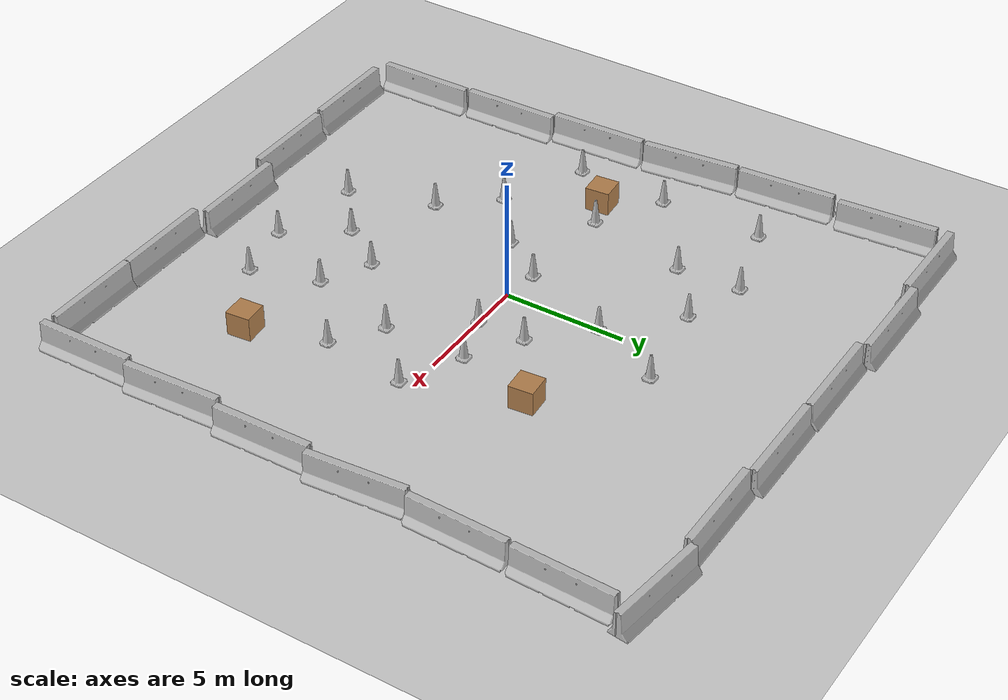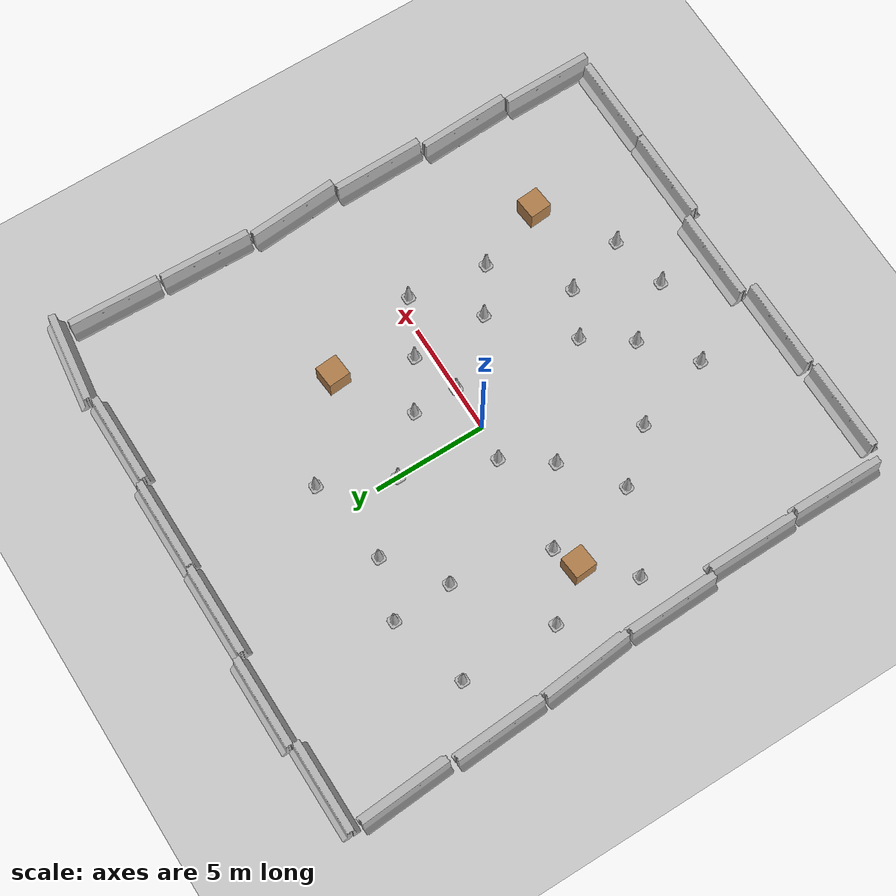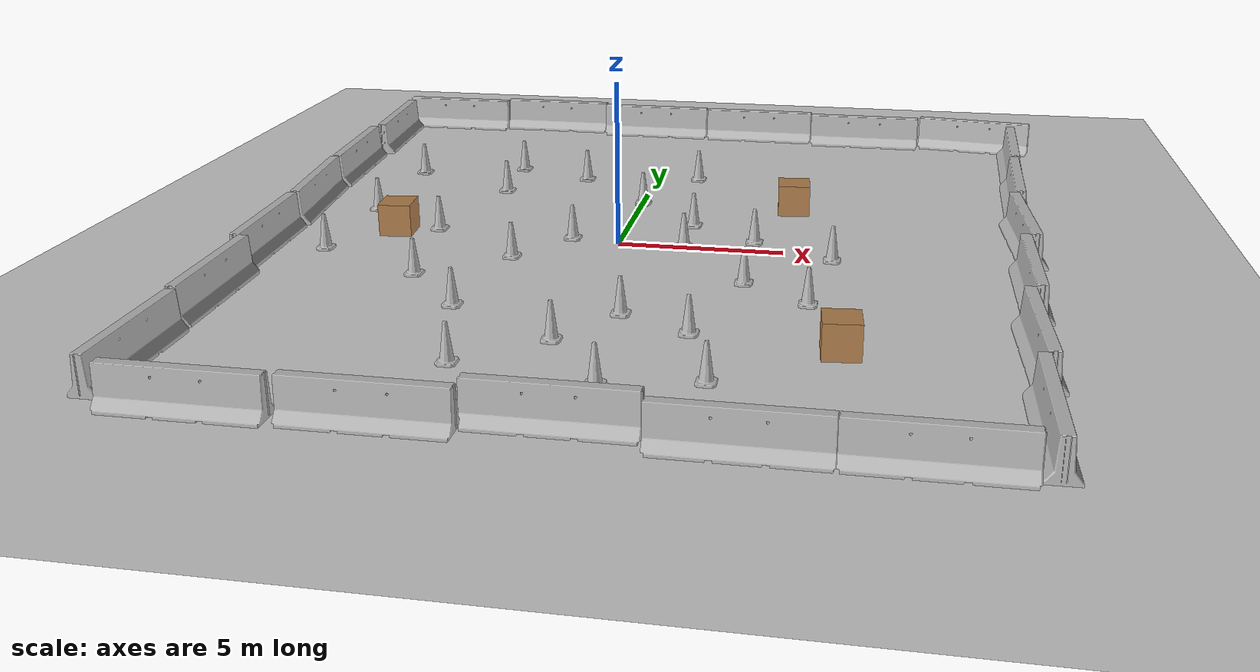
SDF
<sdf version="1.4">
 <world name="default">
  <light name="sun" type="directional">
   <pose>0 0 10 0 -0 0</pose>
   <diffuse>0.8 0.8 0.8 1</diffuse>
   <specular>0.2 0.2 0.2 1</specular>
   <attenuation>
    <range>1000</range>
    <constant>0.9</constant>
    <linear>0.01</linear>
    <quadratic>0.001</quadratic>
   </attenuation>
   <direction>-0.5 0.1 -0.9</direction>
  </light>
  <model name="ground_plane">
   <static>1</static>
   <link name="link">
    <collision name="collision">
     <geometry><plane><normal>0 0 1</normal><size>100 100</size></plane></geometry>
     <surface><friction><ode><mu>100</mu><mu2>50</mu2></ode></friction></surface>
    </collision>
    <visual name="visual">
     <cast_shadows>0</cast_shadows>
     <geometry><plane><normal>0 0 1</normal><size>100 100</size></plane></geometry>
     <material>
      <script><uri>file://media/materials/scripts/gazebo.material</uri><name>Gazebo/Grey</name></script>
     </material>
    </visual>
    <velocity_decay><linear>0</linear><angular>0</angular></velocity_decay>
   </link>
  </model>
  <physics type="ode">
   <max_step_size>0.001</max_step_size>
   <real_time_factor>1</real_time_factor>
   <real_time_update_rate>1000</real_time_update_rate>
   <gravity>0 0 -9.8</gravity>
  </physics>
  <scene><ambient>0.4 0.4 0.4 1</ambient><background>0.7 0.7 0.7 1</background><shadows>1</shadows></scene>
  <spherical_coordinates>
   <surface_model>EARTH_WGS84</surface_model>
   <latitude_deg>0</latitude_deg>
   <longitude_deg>0</longitude_deg>
   <elevation>0</elevation>
   <heading_deg>0</heading_deg>
  </spherical_coordinates>
  <model name="unit_box_1">
   <pose>5 4 0.5 0 -0 0.083754</pose>
   <link name="link">
    <inertial>
     <mass>1</mass>
     <inertia><ixx>1</ixx><ixy>0</ixy><ixz>0</ixz><iyy>1</iyy><iyz>0</iyz><izz>1</izz></inertia>
    </inertial>
    <collision name="collision"><geometry><box><size>1 1 1</size></box></geometry></collision>
    <visual name="visual">
     <geometry><box><size>1 1 1</size></box></geometry>
     <material>
      <script><uri>file://media/materials/scripts/gazebo.material</uri><name>Gazebo/Wood</name></script>
     </material>
    </visual>
    <velocity_decay><linear>0</linear><angular>0</angular></velocity_decay>
   </link>
   <static>0</static>
  </model>
  <model name="unit_box_2">
   <pose>7 -7 0.5 0 -0 0.083754</pose>
   <link name="link">
    <inertial>
     <mass>1</mass>
     <inertia><ixx>1</ixx><ixy>0</ixy><ixz>0</ixz><iyy>1</iyy><iyz>0</iyz><izz>1</izz></inertia>
    </inertial>
    <collision name="collision"><geometry><box><size>1 1 1</size></box></geometry></collision>
    <visual name="visual">
     <geometry><box><size>1 1 1</size></box></geometry>
     <material>
      <script><uri>file://media/materials/scripts/gazebo.material</uri><name>Gazebo/Wood</name></script>
     </material>
    </visual>
    <velocity_decay><linear>0</linear><angular>0</angular></velocity_decay>
   </link>
   <static>0</static>
  </model>
  <model name="unit_box_3">
   <pose>-7 0 0.5 0 -0 0.083754</pose>
   <link name="link">
    <inertial>
     <mass>1</mass>
     <inertia><ixx>1</ixx><ixy>0</ixy><ixz>0</ixz><iyy>1</iyy><iyz>0</iyz><izz>1</izz></inertia>
    </inertial>
    <collision name="collision"><geometry><box><size>1 1 1</size></box></geometry></collision>
    <visual name="visual">
     <geometry><box><size>1 1 1</size></box></geometry>
     <material>
      <script><uri>file://media/materials/scripts/gazebo.material</uri><name>Gazebo/Wood</name></script>
     </material>
    </visual>
    <velocity_decay><linear>0</linear><angular>0</angular></velocity_decay>
   </link>
   <static>0</static>
  </model>
  <model name="jersey_barrier">
   <static>1</static>
   <link name="link">
    <visual name="visual">
     <geometry><mesh><uri>model://jersey_barrier/meshes/jersey_barrier.dae</uri></mesh></geometry>
    </visual>
    <collision name="upright">
     <pose>0 0 0.5715 0 -0 0</pose>
     <geometry><box><size>4.06542 0.3063 1.143</size></box></geometry>
    </collision>
    <collision name="base">
     <pose>0 0 0.032258 0 -0 0</pose>
     <geometry><box><size>4.06542 0.8107 0.064516</size></box></geometry>
    </collision>
    <collision name="base2">
     <pose>0 0 0.1 0 -0 0</pose>
     <geometry><box><size>4.06542 0.65 0.1</size></box></geometry>
    </collision>
    <collision name="base3">
     <pose>0 0 0.2 0 -0 0</pose>
     <geometry><box><size>4.06542 0.5 0.1</size></box></geometry>
    </collision>
    <collision name="left-angle">
     <pose>0 -0.224 0.2401 0.9 -0 0</pose>
     <geometry><box><size>4.06542 0.5 0.064516</size></box></geometry>
    </collision>
    <collision name="right-angle">
     <pose>0 0.224 0.2401 -0.9 0 0</pose>
     <geometry><box><size>4.06542 0.5 0.064516</size></box></geometry>
    </collision>
    <velocity_decay><linear>0</linear><angular>0</angular></velocity_decay>
   </link>
   <pose>-7.26215 -12.5985 0 0 -0 0</pose>
  </model>
  <model name="jersey_barrier_0">
   <static>1</static>
   <link name="link">
    <visual name="visual">
     <geometry><mesh><uri>model://jersey_barrier/meshes/jersey_barrier.dae</uri></mesh></geometry>
    </visual>
    <collision name="upright">
     <pose>0 0 0.5715 0 -0 0</pose>
     <geometry><box><size>4.06542 0.3063 1.143</size></box></geometry>
    </collision>
    <collision name="base">
     <pose>0 0 0.032258 0 -0 0</pose>
     <geometry><box><size>4.06542 0.8107 0.064516</size></box></geometry>
    </collision>
    <collision name="base2">
     <pose>0 0 0.1 0 -0 0</pose>
     <geometry><box><size>4.06542 0.65 0.1</size></box></geometry>
    </collision>
    <collision name="base3">
     <pose>0 0 0.2 0 -0 0</pose>
     <geometry><box><size>4.06542 0.5 0.1</size></box></geometry>
    </collision>
    <collision name="left-angle">
     <pose>0 -0.224 0.2401 0.9 -0 0</pose>
     <geometry><box><size>4.06542 0.5 0.064516</size></box></geometry>
    </collision>
    <collision name="right-angle">
     <pose>0 0.224 0.2401 -0.9 0 0</pose>
     <geometry><box><size>4.06542 0.5 0.064516</size></box></geometry>
    </collision>
    <velocity_decay><linear>0</linear><angular>0</angular></velocity_decay>
   </link>
   <pose>-3 -12.5184 0 0 -0 0</pose>
  </model>
  <model name="jersey_barrier_1">
   <static>1</static>
   <link name="link">
    <visual name="visual">
     <geometry><mesh><uri>model://jersey_barrier/meshes/jersey_barrier.dae</uri></mesh></geometry>
    </visual>
    <collision name="upright">
     <pose>0 0 0.5715 0 -0 0</pose>
     <geometry><box><size>4.06542 0.3063 1.143</size></box></geometry>
    </collision>
    <collision name="base">
     <pose>0 0 0.032258 0 -0 0</pose>
     <geometry><box><size>4.06542 0.8107 0.064516</size></box></geometry>
    </collision>
    <collision name="base2">
     <pose>0 0 0.1 0 -0 0</pose>
     <geometry><box><size>4.06542 0.65 0.1</size></box></geometry>
    </collision>
    <collision name="base3">
     <pose>0 0 0.2 0 -0 0</pose>
     <geometry><box><size>4.06542 0.5 0.1</size></box></geometry>
    </collision>
    <collision name="left-angle">
     <pose>0 -0.224 0.2401 0.9 -0 0</pose>
     <geometry><box><size>4.06542 0.5 0.064516</size></box></geometry>
    </collision>
    <collision name="right-angle">
     <pose>0 0.224 0.2401 -0.9 0 0</pose>
     <geometry><box><size>4.06542 0.5 0.064516</size></box></geometry>
    </collision>
    <velocity_decay><linear>0</linear><angular>0</angular></velocity_decay>
   </link>
   <pose>1 -12 0 0 -0 0</pose>
  </model>
  <model name="jersey_barrier_2">
   <static>1</static>
   <link name="link">
    <visual name="visual">
     <geometry><mesh><uri>model://jersey_barrier/meshes/jersey_barrier.dae</uri></mesh></geometry>
    </visual>
    <collision name="upright">
     <pose>0 0 0.5715 0 -0 0</pose>
     <geometry><box><size>4.06542 0.3063 1.143</size></box></geometry>
    </collision>
    <collision name="base">
     <pose>0 0 0.032258 0 -0 0</pose>
     <geometry><box><size>4.06542 0.8107 0.064516</size></box></geometry>
    </collision>
    <collision name="base2">
     <pose>0 0 0.1 0 -0 0</pose>
     <geometry><box><size>4.06542 0.65 0.1</size></box></geometry>
    </collision>
    <collision name="base3">
     <pose>0 0 0.2 0 -0 0</pose>
     <geometry><box><size>4.06542 0.5 0.1</size></box></geometry>
    </collision>
    <collision name="left-angle">
     <pose>0 -0.224 0.2401 0.9 -0 0</pose>
     <geometry><box><size>4.06542 0.5 0.064516</size></box></geometry>
    </collision>
    <collision name="right-angle">
     <pose>0 0.224 0.2401 -0.9 0 0</pose>
     <geometry><box><size>4.06542 0.5 0.064516</size></box></geometry>
    </collision>
    <velocity_decay><linear>0</linear><angular>0</angular></velocity_decay>
   </link>
   <pose>5.13642 -12.451 0 0 -0 0</pose>
  </model>
  <model name="jersey_barrier_3">
   <static>1</static>
   <link name="link">
    <visual name="visual">
     <geometry><mesh><uri>model://jersey_barrier/meshes/jersey_barrier.dae</uri></mesh></geometry>
    </visual>
    <collision name="upright">
     <pose>0 0 0.5715 0 -0 0</pose>
     <geometry><box><size>4.06542 0.3063 1.143</size></box></geometry>
    </collision>
    <collision name="base">
     <pose>0 0 0.032258 0 -0 0</pose>
     <geometry><box><size>4.06542 0.8107 0.064516</size></box></geometry>
    </collision>
    <collision name="base2">
     <pose>0 0 0.1 0 -0 0</pose>
     <geometry><box><size>4.06542 0.65 0.1</size></box></geometry>
    </collision>
    <collision name="base3">
     <pose>0 0 0.2 0 -0 0</pose>
     <geometry><box><size>4.06542 0.5 0.1</size></box></geometry>
    </collision>
    <collision name="left-angle">
     <pose>0 -0.224 0.2401 0.9 -0 0</pose>
     <geometry><box><size>4.06542 0.5 0.064516</size></box></geometry>
    </collision>
    <collision name="right-angle">
     <pose>0 0.224 0.2401 -0.9 0 0</pose>
     <geometry><box><size>4.06542 0.5 0.064516</size></box></geometry>
    </collision>
    <velocity_decay><linear>0</linear><angular>0</angular></velocity_decay>
   </link>
   <pose>9.19104 -12.4604 0 0 -0 0</pose>
  </model>
  <model name="jersey_barrier_4">
   <static>1</static>
   <link name="link">
    <visual name="visual">
     <geometry><mesh><uri>model://jersey_barrier/meshes/jersey_barrier.dae</uri></mesh></geometry>
    </visual>
    <collision name="upright">
     <pose>0 0 0.5715 0 -0 0</pose>
     <geometry><box><size>4.06542 0.3063 1.143</size></box></geometry>
    </collision>
    <collision name="base">
     <pose>0 0 0.032258 0 -0 0</pose>
     <geometry><box><size>4.06542 0.8107 0.064516</size></box></geometry>
    </collision>
    <collision name="base2">
     <pose>0 0 0.1 0 -0 0</pose>
     <geometry><box><size>4.06542 0.65 0.1</size></box></geometry>
    </collision>
    <collision name="base3">
     <pose>0 0 0.2 0 -0 0</pose>
     <geometry><box><size>4.06542 0.5 0.1</size></box></geometry>
    </collision>
    <collision name="left-angle">
     <pose>0 -0.224 0.2401 0.9 -0 0</pose>
     <geometry><box><size>4.06542 0.5 0.064516</size></box></geometry>
    </collision>
    <collision name="right-angle">
     <pose>0 0.224 0.2401 -0.9 0 0</pose>
     <geometry><box><size>4.06542 0.5 0.064516</size></box></geometry>
    </collision>
    <velocity_decay><linear>0</linear><angular>0</angular></velocity_decay>
   </link>
   <pose>11.6163 -10.6377 0 0 -0 1.58161</pose>
  </model>
  <model name="jersey_barrier_5">
   <static>1</static>
   <link name="link">
    <visual name="visual">
     <geometry><mesh><uri>model://jersey_barrier/meshes/jersey_barrier.dae</uri></mesh></geometry>
    </visual>
    <collision name="upright">
     <pose>0 0 0.5715 0 -0 0</pose>
     <geometry><box><size>4.06542 0.3063 1.143</size></box></geometry>
    </collision>
    <collision name="base">
     <pose>0 0 0.032258 0 -0 0</pose>
     <geometry><box><size>4.06542 0.8107 0.064516</size></box></geometry>
    </collision>
    <collision name="base2">
     <pose>0 0 0.1 0 -0 0</pose>
     <geometry><box><size>4.06542 0.65 0.1</size></box></geometry>
    </collision>
    <collision name="base3">
     <pose>0 0 0.2 0 -0 0</pose>
     <geometry><box><size>4.06542 0.5 0.1</size></box></geometry>
    </collision>
    <collision name="left-angle">
     <pose>0 -0.224 0.2401 0.9 -0 0</pose>
     <geometry><box><size>4.06542 0.5 0.064516</size></box></geometry>
    </collision>
    <collision name="right-angle">
     <pose>0 0.224 0.2401 -0.9 0 0</pose>
     <geometry><box><size>4.06542 0.5 0.064516</size></box></geometry>
    </collision>
    <velocity_decay><linear>0</linear><angular>0</angular></velocity_decay>
   </link>
   <pose>-9.25889 13.0001 0 0 -0 0</pose>
  </model>
  <model name="jersey_barrier_6">
   <static>1</static>
   <link name="link">
    <visual name="visual">
     <geometry><mesh><uri>model://jersey_barrier/meshes/jersey_barrier.dae</uri></mesh></geometry>
    </visual>
    <collision name="upright">
     <pose>0 0 0.5715 0 -0 0</pose>
     <geometry><box><size>4.06542 0.3063 1.143</size></box></geometry>
    </collision>
    <collision name="base">
     <pose>0 0 0.032258 0 -0 0</pose>
     <geometry><box><size>4.06542 0.8107 0.064516</size></box></geometry>
    </collision>
    <collision name="base2">
     <pose>0 0 0.1 0 -0 0</pose>
     <geometry><box><size>4.06542 0.65 0.1</size></box></geometry>
    </collision>
    <collision name="base3">
     <pose>0 0 0.2 0 -0 0</pose>
     <geometry><box><size>4.06542 0.5 0.1</size></box></geometry>
    </collision>
    <collision name="left-angle">
     <pose>0 -0.224 0.2401 0.9 -0 0</pose>
     <geometry><box><size>4.06542 0.5 0.064516</size></box></geometry>
    </collision>
    <collision name="right-angle">
     <pose>0 0.224 0.2401 -0.9 0 0</pose>
     <geometry><box><size>4.06542 0.5 0.064516</size></box></geometry>
    </collision>
    <velocity_decay><linear>0</linear><angular>0</angular></velocity_decay>
   </link>
   <pose>-5.24766 13.2823 0 0 -0 0</pose>
  </model>
  <model name="jersey_barrier_7">
   <static>1</static>
   <link name="link">
    <visual name="visual">
     <geometry><mesh><uri>model://jersey_barrier/meshes/jersey_barrier.dae</uri></mesh></geometry>
    </visual>
    <collision name="upright">
     <pose>0 0 0.5715 0 -0 0</pose>
     <geometry><box><size>4.06542 0.3063 1.143</size></box></geometry>
    </collision>
    <collision name="base">
     <pose>0 0 0.032258 0 -0 0</pose>
     <geometry><box><size>4.06542 0.8107 0.064516</size></box></geometry>
    </collision>
    <collision name="base2">
     <pose>0 0 0.1 0 -0 0</pose>
     <geometry><box><size>4.06542 0.65 0.1</size></box></geometry>
    </collision>
    <collision name="base3">
     <pose>0 0 0.2 0 -0 0</pose>
     <geometry><box><size>4.06542 0.5 0.1</size></box></geometry>
    </collision>
    <collision name="left-angle">
     <pose>0 -0.224 0.2401 0.9 -0 0</pose>
     <geometry><box><size>4.06542 0.5 0.064516</size></box></geometry>
    </collision>
    <collision name="right-angle">
     <pose>0 0.224 0.2401 -0.9 0 0</pose>
     <geometry><box><size>4.06542 0.5 0.064516</size></box></geometry>
    </collision>
    <velocity_decay><linear>0</linear><angular>0</angular></velocity_decay>
   </link>
   <pose>-1.1439 12.9956 0 0 -0 0</pose>
  </model>
  <model name="jersey_barrier_8">
   <static>1</static>
   <link name="link">
    <visual name="visual">
     <geometry><mesh><uri>model://jersey_barrier/meshes/jersey_barrier.dae</uri></mesh></geometry>
    </visual>
    <collision name="upright">
     <pose>0 0 0.5715 0 -0 0</pose>
     <geometry><box><size>4.06542 0.3063 1.143</size></box></geometry>
    </collision>
    <collision name="base">
     <pose>0 0 0.032258 0 -0 0</pose>
     <geometry><box><size>4.06542 0.8107 0.064516</size></box></geometry>
    </collision>
    <collision name="base2">
     <pose>0 0 0.1 0 -0 0</pose>
     <geometry><box><size>4.06542 0.65 0.1</size></box></geometry>
    </collision>
    <collision name="base3">
     <pose>0 0 0.2 0 -0 0</pose>
     <geometry><box><size>4.06542 0.5 0.1</size></box></geometry>
    </collision>
    <collision name="left-angle">
     <pose>0 -0.224 0.2401 0.9 -0 0</pose>
     <geometry><box><size>4.06542 0.5 0.064516</size></box></geometry>
    </collision>
    <collision name="right-angle">
     <pose>0 0.224 0.2401 -0.9 0 0</pose>
     <geometry><box><size>4.06542 0.5 0.064516</size></box></geometry>
    </collision>
    <velocity_decay><linear>0</linear><angular>0</angular></velocity_decay>
   </link>
   <pose>2.95316 12.9508 0 0 -0 0</pose>
  </model>
  <model name="jersey_barrier_9">
   <static>1</static>
   <link name="link">
    <visual name="visual">
     <geometry><mesh><uri>model://jersey_barrier/meshes/jersey_barrier.dae</uri></mesh></geometry>
    </visual>
    <collision name="upright">
     <pose>0 0 0.5715 0 -0 0</pose>
     <geometry><box><size>4.06542 0.3063 1.143</size></box></geometry>
    </collision>
    <collision name="base">
     <pose>0 0 0.032258 0 -0 0</pose>
     <geometry><box><size>4.06542 0.8107 0.064516</size></box></geometry>
    </collision>
    <collision name="base2">
     <pose>0 0 0.1 0 -0 0</pose>
     <geometry><box><size>4.06542 0.65 0.1</size></box></geometry>
    </collision>
    <collision name="base3">
     <pose>0 0 0.2 0 -0 0</pose>
     <geometry><box><size>4.06542 0.5 0.1</size></box></geometry>
    </collision>
    <collision name="left-angle">
     <pose>0 -0.224 0.2401 0.9 -0 0</pose>
     <geometry><box><size>4.06542 0.5 0.064516</size></box></geometry>
    </collision>
    <collision name="right-angle">
     <pose>0 0.224 0.2401 -0.9 0 0</pose>
     <geometry><box><size>4.06542 0.5 0.064516</size></box></geometry>
    </collision>
    <velocity_decay><linear>0</linear><angular>0</angular></velocity_decay>
   </link>
   <pose>7.0396 12.7183 0 0 -0 0</pose>
  </model>
  <model name="jersey_barrier_10">
   <static>1</static>
   <link name="link">
    <visual name="visual">
     <geometry><mesh><uri>model://jersey_barrier/meshes/jersey_barrier.dae</uri></mesh></geometry>
    </visual>
    <collision name="upright">
     <pose>0 0 0.5715 0 -0 0</pose>
     <geometry><box><size>4.06542 0.3063 1.143</size></box></geometry>
    </collision>
    <collision name="base">
     <pose>0 0 0.032258 0 -0 0</pose>
     <geometry><box><size>4.06542 0.8107 0.064516</size></box></geometry>
    </collision>
    <collision name="base2">
     <pose>0 0 0.1 0 -0 0</pose>
     <geometry><box><size>4.06542 0.65 0.1</size></box></geometry>
    </collision>
    <collision name="base3">
     <pose>0 0 0.2 0 -0 0</pose>
     <geometry><box><size>4.06542 0.5 0.1</size></box></geometry>
    </collision>
    <collision name="left-angle">
     <pose>0 -0.224 0.2401 0.9 -0 0</pose>
     <geometry><box><size>4.06542 0.5 0.064516</size></box></geometry>
    </collision>
    <collision name="right-angle">
     <pose>0 0.224 0.2401 -0.9 0 0</pose>
     <geometry><box><size>4.06542 0.5 0.064516</size></box></geometry>
    </collision>
    <velocity_decay><linear>0</linear><angular>0</angular></velocity_decay>
   </link>
   <pose>11.167 12.7238 0 0 0 -0.129577</pose>
  </model>
  <model name="jersey_barrier_11">
   <static>1</static>
   <link name="link">
    <visual name="visual">
     <geometry><mesh><uri>model://jersey_barrier/meshes/jersey_barrier.dae</uri></mesh></geometry>
    </visual>
    <collision name="upright">
     <pose>0 0 0.5715 0 -0 0</pose>
     <geometry><box><size>4.06542 0.3063 1.143</size></box></geometry>
    </collision>
    <collision name="base">
     <pose>0 0 0.032258 0 -0 0</pose>
     <geometry><box><size>4.06542 0.8107 0.064516</size></box></geometry>
    </collision>
    <collision name="base2">
     <pose>0 0 0.1 0 -0 0</pose>
     <geometry><box><size>4.06542 0.65 0.1</size></box></geometry>
    </collision>
    <collision name="base3">
     <pose>0 0 0.2 0 -0 0</pose>
     <geometry><box><size>4.06542 0.5 0.1</size></box></geometry>
    </collision>
    <collision name="left-angle">
     <pose>0 -0.224 0.2401 0.9 -0 0</pose>
     <geometry><box><size>4.06542 0.5 0.064516</size></box></geometry>
    </collision>
    <collision name="right-angle">
     <pose>0 0.224 0.2401 -0.9 0 0</pose>
     <geometry><box><size>4.06542 0.5 0.064516</size></box></geometry>
    </collision>
    <velocity_decay><linear>0</linear><angular>0</angular></velocity_decay>
   </link>
   <pose>12.194 5.8304 0 0 -0 1.54369</pose>
  </model>
  <model name="jersey_barrier_12">
   <static>1</static>
   <link name="link">
    <visual name="visual">
     <geometry><mesh><uri>model://jersey_barrier/meshes/jersey_barrier.dae</uri></mesh></geometry>
    </visual>
    <collision name="upright">
     <pose>0 0 0.5715 0 -0 0</pose>
     <geometry><box><size>4.06542 0.3063 1.143</size></box></geometry>
    </collision>
    <collision name="base">
     <pose>0 0 0.032258 0 -0 0</pose>
     <geometry><box><size>4.06542 0.8107 0.064516</size></box></geometry>
    </collision>
    <collision name="base2">
     <pose>0 0 0.1 0 -0 0</pose>
     <geometry><box><size>4.06542 0.65 0.1</size></box></geometry>
    </collision>
    <collision name="base3">
     <pose>0 0 0.2 0 -0 0</pose>
     <geometry><box><size>4.06542 0.5 0.1</size></box></geometry>
    </collision>
    <collision name="left-angle">
     <pose>0 -0.224 0.2401 0.9 -0 0</pose>
     <geometry><box><size>4.06542 0.5 0.064516</size></box></geometry>
    </collision>
    <collision name="right-angle">
     <pose>0 0.224 0.2401 -0.9 0 0</pose>
     <geometry><box><size>4.06542 0.5 0.064516</size></box></geometry>
    </collision>
    <velocity_decay><linear>0</linear><angular>0</angular></velocity_decay>
   </link>
   <pose>12.0907 1.67887 0 0 -0 1.64825</pose>
  </model>
  <model name="jersey_barrier_13">
   <static>1</static>
   <link name="link">
    <visual name="visual">
     <geometry><mesh><uri>model://jersey_barrier/meshes/jersey_barrier.dae</uri></mesh></geometry>
    </visual>
    <collision name="upright">
     <pose>0 0 0.5715 0 -0 0</pose>
     <geometry><box><size>4.06542 0.3063 1.143</size></box></geometry>
    </collision>
    <collision name="base">
     <pose>0 0 0.032258 0 -0 0</pose>
     <geometry><box><size>4.06542 0.8107 0.064516</size></box></geometry>
    </collision>
    <collision name="base2">
     <pose>0 0 0.1 0 -0 0</pose>
     <geometry><box><size>4.06542 0.65 0.1</size></box></geometry>
    </collision>
    <collision name="base3">
     <pose>0 0 0.2 0 -0 0</pose>
     <geometry><box><size>4.06542 0.5 0.1</size></box></geometry>
    </collision>
    <collision name="left-angle">
     <pose>0 -0.224 0.2401 0.9 -0 0</pose>
     <geometry><box><size>4.06542 0.5 0.064516</size></box></geometry>
    </collision>
    <collision name="right-angle">
     <pose>0 0.224 0.2401 -0.9 0 0</pose>
     <geometry><box><size>4.06542 0.5 0.064516</size></box></geometry>
    </collision>
    <velocity_decay><linear>0</linear><angular>0</angular></velocity_decay>
   </link>
   <pose>11.9521 -2.38624 0 0 -0 1.58545</pose>
  </model>
  <model name="jersey_barrier_14">
   <static>1</static>
   <link name="link">
    <visual name="visual">
     <geometry><mesh><uri>model://jersey_barrier/meshes/jersey_barrier.dae</uri></mesh></geometry>
    </visual>
    <collision name="upright">
     <pose>0 0 0.5715 0 -0 0</pose>
     <geometry><box><size>4.06542 0.3063 1.143</size></box></geometry>
    </collision>
    <collision name="base">
     <pose>0 0 0.032258 0 -0 0</pose>
     <geometry><box><size>4.06542 0.8107 0.064516</size></box></geometry>
    </collision>
    <collision name="base2">
     <pose>0 0 0.1 0 -0 0</pose>
     <geometry><box><size>4.06542 0.65 0.1</size></box></geometry>
    </collision>
    <collision name="base3">
     <pose>0 0 0.2 0 -0 0</pose>
     <geometry><box><size>4.06542 0.5 0.1</size></box></geometry>
    </collision>
    <collision name="left-angle">
     <pose>0 -0.224 0.2401 0.9 -0 0</pose>
     <geometry><box><size>4.06542 0.5 0.064516</size></box></geometry>
    </collision>
    <collision name="right-angle">
     <pose>0 0.224 0.2401 -0.9 0 0</pose>
     <geometry><box><size>4.06542 0.5 0.064516</size></box></geometry>
    </collision>
    <velocity_decay><linear>0</linear><angular>0</angular></velocity_decay>
   </link>
   <pose>11.7484 -6.5369 0 0 -0 1.61742</pose>
  </model>
  <model name="jersey_barrier_15">
   <static>1</static>
   <link name="link">
    <visual name="visual">
     <geometry><mesh><uri>model://jersey_barrier/meshes/jersey_barrier.dae</uri></mesh></geometry>
    </visual>
    <collision name="upright">
     <pose>0 0 0.5715 0 -0 0</pose>
     <geometry><box><size>4.06542 0.3063 1.143</size></box></geometry>
    </collision>
    <collision name="base">
     <pose>0 0 0.032258 0 -0 0</pose>
     <geometry><box><size>4.06542 0.8107 0.064516</size></box></geometry>
    </collision>
    <collision name="base2">
     <pose>0 0 0.1 0 -0 0</pose>
     <geometry><box><size>4.06542 0.65 0.1</size></box></geometry>
    </collision>
    <collision name="base3">
     <pose>0 0 0.2 0 -0 0</pose>
     <geometry><box><size>4.06542 0.5 0.1</size></box></geometry>
    </collision>
    <collision name="left-angle">
     <pose>0 -0.224 0.2401 0.9 -0 0</pose>
     <geometry><box><size>4.06542 0.5 0.064516</size></box></geometry>
    </collision>
    <collision name="right-angle">
     <pose>0 0.224 0.2401 -0.9 0 0</pose>
     <geometry><box><size>4.06542 0.5 0.064516</size></box></geometry>
    </collision>
    <velocity_decay><linear>0</linear><angular>0</angular></velocity_decay>
   </link>
   <pose>-10.907 6.17584 0 0 -0 1.63254</pose>
  </model>
  <model name="jersey_barrier_16">
   <static>1</static>
   <link name="link">
    <visual name="visual">
     <geometry><mesh><uri>model://jersey_barrier/meshes/jersey_barrier.dae</uri></mesh></geometry>
    </visual>
    <collision name="upright">
     <pose>0 0 0.5715 0 -0 0</pose>
     <geometry><box><size>4.06542 0.3063 1.143</size></box></geometry>
    </collision>
    <collision name="base">
     <pose>0 0 0.032258 0 -0 0</pose>
     <geometry><box><size>4.06542 0.8107 0.064516</size></box></geometry>
    </collision>
    <collision name="base2">
     <pose>0 0 0.1 0 -0 0</pose>
     <geometry><box><size>4.06542 0.65 0.1</size></box></geometry>
    </collision>
    <collision name="base3">
     <pose>0 0 0.2 0 -0 0</pose>
     <geometry><box><size>4.06542 0.5 0.1</size></box></geometry>
    </collision>
    <collision name="left-angle">
     <pose>0 -0.224 0.2401 0.9 -0 0</pose>
     <geometry><box><size>4.06542 0.5 0.064516</size></box></geometry>
    </collision>
    <collision name="right-angle">
     <pose>0 0.224 0.2401 -0.9 0 0</pose>
     <geometry><box><size>4.06542 0.5 0.064516</size></box></geometry>
    </collision>
    <velocity_decay><linear>0</linear><angular>0</angular></velocity_decay>
   </link>
   <pose>-10.6126 2.01572 0 0 -0 1.67324</pose>
  </model>
  <model name="jersey_barrier_17">
   <static>1</static>
   <link name="link">
    <visual name="visual">
     <geometry><mesh><uri>model://jersey_barrier/meshes/jersey_barrier.dae</uri></mesh></geometry>
    </visual>
    <collision name="upright">
     <pose>0 0 0.5715 0 -0 0</pose>
     <geometry><box><size>4.06542 0.3063 1.143</size></box></geometry>
    </collision>
    <collision name="base">
     <pose>0 0 0.032258 0 -0 0</pose>
     <geometry><box><size>4.06542 0.8107 0.064516</size></box></geometry>
    </collision>
    <collision name="base2">
     <pose>0 0 0.1 0 -0 0</pose>
     <geometry><box><size>4.06542 0.65 0.1</size></box></geometry>
    </collision>
    <collision name="base3">
     <pose>0 0 0.2 0 -0 0</pose>
     <geometry><box><size>4.06542 0.5 0.1</size></box></geometry>
    </collision>
    <collision name="left-angle">
     <pose>0 -0.224 0.2401 0.9 -0 0</pose>
     <geometry><box><size>4.06542 0.5 0.064516</size></box></geometry>
    </collision>
    <collision name="right-angle">
     <pose>0 0.224 0.2401 -0.9 0 0</pose>
     <geometry><box><size>4.06542 0.5 0.064516</size></box></geometry>
    </collision>
    <velocity_decay><linear>0</linear><angular>0</angular></velocity_decay>
   </link>
   <pose>-10.3644 -2.14271 0 0 -0 1.60702</pose>
  </model>
  <model name="jersey_barrier_18">
   <static>1</static>
   <link name="link">
    <visual name="visual">
     <geometry><mesh><uri>model://jersey_barrier/meshes/jersey_barrier.dae</uri></mesh></geometry>
    </visual>
    <collision name="upright">
     <pose>0 0 0.5715 0 -0 0</pose>
     <geometry><box><size>4.06542 0.3063 1.143</size></box></geometry>
    </collision>
    <collision name="base">
     <pose>0 0 0.032258 0 -0 0</pose>
     <geometry><box><size>4.06542 0.8107 0.064516</size></box></geometry>
    </collision>
    <collision name="base2">
     <pose>0 0 0.1 0 -0 0</pose>
     <geometry><box><size>4.06542 0.65 0.1</size></box></geometry>
    </collision>
    <collision name="base3">
     <pose>0 0 0.2 0 -0 0</pose>
     <geometry><box><size>4.06542 0.5 0.1</size></box></geometry>
    </collision>
    <collision name="left-angle">
     <pose>0 -0.224 0.2401 0.9 -0 0</pose>
     <geometry><box><size>4.06542 0.5 0.064516</size></box></geometry>
    </collision>
    <collision name="right-angle">
     <pose>0 0.224 0.2401 -0.9 0 0</pose>
     <geometry><box><size>4.06542 0.5 0.064516</size></box></geometry>
    </collision>
    <velocity_decay><linear>0</linear><angular>0</angular></velocity_decay>
   </link>
   <pose>-9.98265 -6.18571 0 0 -0 1.58701</pose>
  </model>
  <model name="jersey_barrier_19">
   <static>1</static>
   <link name="link">
    <visual name="visual">
     <geometry><mesh><uri>model://jersey_barrier/meshes/jersey_barrier.dae</uri></mesh></geometry>
    </visual>
    <collision name="upright">
     <pose>0 0 0.5715 0 -0 0</pose>
     <geometry><box><size>4.06542 0.3063 1.143</size></box></geometry>
    </collision>
    <collision name="base">
     <pose>0 0 0.032258 0 -0 0</pose>
     <geometry><box><size>4.06542 0.8107 0.064516</size></box></geometry>
    </collision>
    <collision name="base2">
     <pose>0 0 0.1 0 -0 0</pose>
     <geometry><box><size>4.06542 0.65 0.1</size></box></geometry>
    </collision>
    <collision name="base3">
     <pose>0 0 0.2 0 -0 0</pose>
     <geometry><box><size>4.06542 0.5 0.1</size></box></geometry>
    </collision>
    <collision name="left-angle">
     <pose>0 -0.224 0.2401 0.9 -0 0</pose>
     <geometry><box><size>4.06542 0.5 0.064516</size></box></geometry>
    </collision>
    <collision name="right-angle">
     <pose>0 0.224 0.2401 -0.9 0 0</pose>
     <geometry><box><size>4.06542 0.5 0.064516</size></box></geometry>
    </collision>
    <velocity_decay><linear>0</linear><angular>0</angular></velocity_decay>
   </link>
   <pose>-9.85449 -10.3717 0 0 -0 1.57336</pose>
  </model>
  <model name="jersey_barrier_20">
   <static>1</static>
   <link name="link">
    <visual name="visual">
     <geometry><mesh><uri>model://jersey_barrier/meshes/jersey_barrier.dae</uri></mesh></geometry>
    </visual>
    <collision name="upright">
     <pose>0 0 0.5715 0 -0 0</pose>
     <geometry><box><size>4.06542 0.3063 1.143</size></box></geometry>
    </collision>
    <collision name="base">
     <pose>0 0 0.032258 0 -0 0</pose>
     <geometry><box><size>4.06542 0.8107 0.064516</size></box></geometry>
    </collision>
    <collision name="base2">
     <pose>0 0 0.1 0 -0 0</pose>
     <geometry><box><size>4.06542 0.65 0.1</size></box></geometry>
    </collision>
    <collision name="base3">
     <pose>0 0 0.2 0 -0 0</pose>
     <geometry><box><size>4.06542 0.5 0.1</size></box></geometry>
    </collision>
    <collision name="left-angle">
     <pose>0 -0.224 0.2401 0.9 -0 0</pose>
     <geometry><box><size>4.06542 0.5 0.064516</size></box></geometry>
    </collision>
    <collision name="right-angle">
     <pose>0 0.224 0.2401 -0.9 0 0</pose>
     <geometry><box><size>4.06542 0.5 0.064516</size></box></geometry>
    </collision>
    <velocity_decay><linear>0</linear><angular>0</angular></velocity_decay>
   </link>
   <pose>12.3728 10.0187 0 0 -0 1.53674</pose>
  </model>
  <model name="jersey_barrier_21">
   <static>1</static>
   <link name="link">
    <visual name="visual">
     <geometry><mesh><uri>model://jersey_barrier/meshes/jersey_barrier.dae</uri></mesh></geometry>
    </visual>
    <collision name="upright">
     <pose>0 0 0.5715 0 -0 0</pose>
     <geometry><box><size>4.06542 0.3063 1.143</size></box></geometry>
    </collision>
    <collision name="base">
     <pose>0 0 0.032258 0 -0 0</pose>
     <geometry><box><size>4.06542 0.8107 0.064516</size></box></geometry>
    </collision>
    <collision name="base2">
     <pose>0 0 0.1 0 -0 0</pose>
     <geometry><box><size>4.06542 0.65 0.1</size></box></geometry>
    </collision>
    <collision name="base3">
     <pose>0 0 0.2 0 -0 0</pose>
     <geometry><box><size>4.06542 0.5 0.1</size></box></geometry>
    </collision>
    <collision name="left-angle">
     <pose>0 -0.224 0.2401 0.9 -0 0</pose>
     <geometry><box><size>4.06542 0.5 0.064516</size></box></geometry>
    </collision>
    <collision name="right-angle">
     <pose>0 0.224 0.2401 -0.9 0 0</pose>
     <geometry><box><size>4.06542 0.5 0.064516</size></box></geometry>
    </collision>
    <velocity_decay><linear>0</linear><angular>0</angular></velocity_decay>
   </link>
   <pose>-10.9991 10.488 0 0 -0 1.64124</pose>
  </model>
  <model name="Construction Cone">
   <link name="link">
    <collision name="collision">
     <geometry>
      <mesh><scale>10 10 10</scale><uri>model://construction_cone/meshes/construction_cone.dae</uri></mesh>
     </geometry>
    </collision>
    <visual name="visual">
     <geometry>
      <mesh><scale>10 10 10</scale><uri>model://construction_cone/meshes/construction_cone.dae</uri></mesh>
     </geometry>
    </visual>
    <velocity_decay><linear>0</linear><angular>0</angular></velocity_decay>
    <inertial>
     <inertia><ixx>1</ixx><ixy>0</ixy><ixz>0</ixz><iyy>1</iyy><iyz>0</iyz><izz>1</izz></inertia>
     <mass>1</mass>
    </inertial>
   </link>
   <pose>-2.87916 -1.6822 -0 0 1e-06 0</pose>
   <static>0</static>
  </model>
  <model name="Construction Cone_0">
   <link name="link">
    <collision name="collision">
     <geometry>
      <mesh><scale>10 10 10</scale><uri>model://construction_cone/meshes/construction_cone.dae</uri></mesh>
     </geometry>
    </collision>
    <visual name="visual">
     <geometry>
      <mesh><scale>10 10 10</scale><uri>model://construction_cone/meshes/construction_cone.dae</uri></mesh>
     </geometry>
    </visual>
    <velocity_decay><linear>0</linear><angular>0</angular></velocity_decay>
    <inertial>
     <inertia><ixx>1</ixx><ixy>0</ixy><ixz>0</ixz><iyy>1</iyy><iyz>0</iyz><izz>1</izz></inertia>
     <mass>1</mass>
    </inertial>
   </link>
   <pose>2 -0 0 0 -0 0</pose>
   <static>0</static>
  </model>
  <model name="Construction Cone_1">
   <link name="link">
    <collision name="collision">
     <geometry>
      <mesh><scale>10 10 10</scale><uri>model://construction_cone/meshes/construction_cone.dae</uri></mesh>
     </geometry>
    </collision>
    <visual name="visual">
     <geometry>
      <mesh><scale>10 10 10</scale><uri>model://construction_cone/meshes/construction_cone.dae</uri></mesh>
     </geometry>
    </visual>
    <velocity_decay><linear>0</linear><angular>0</angular></velocity_decay>
    <inertial>
     <inertia><ixx>1</ixx><ixy>0</ixy><ixz>0</ixz><iyy>1</iyy><iyz>0</iyz><izz>1</izz></inertia>
     <mass>1</mass>
    </inertial>
   </link>
   <pose>1.17419 -5.44738 -9e-06 0 1e-06 0</pose>
   <static>0</static>
  </model>
  <model name="Construction Cone_2">
   <link name="link">
    <collision name="collision">
     <geometry>
      <mesh><scale>10 10 10</scale><uri>model://construction_cone/meshes/construction_cone.dae</uri></mesh>
     </geometry>
    </collision>
    <visual name="visual">
     <geometry>
      <mesh><scale>10 10 10</scale><uri>model://construction_cone/meshes/construction_cone.dae</uri></mesh>
     </geometry>
    </visual>
    <velocity_decay><linear>0</linear><angular>0</angular></velocity_decay>
    <inertial>
     <inertia><ixx>1</ixx><ixy>0</ixy><ixz>0</ixz><iyy>1</iyy><iyz>0</iyz><izz>1</izz></inertia>
     <mass>1</mass>
    </inertial>
   </link>
   <pose>-3.40771 -5.57895 0 0 -0 0</pose>
   <static>0</static>
  </model>
  <model name="Construction Cone_3">
   <link name="link">
    <collision name="collision">
     <geometry>
      <mesh><scale>10 10 10</scale><uri>model://construction_cone/meshes/construction_cone.dae</uri></mesh>
     </geometry>
    </collision>
    <visual name="visual">
     <geometry>
      <mesh><scale>10 10 10</scale><uri>model://construction_cone/meshes/construction_cone.dae</uri></mesh>
     </geometry>
    </visual>
    <velocity_decay><linear>0</linear><angular>0</angular></velocity_decay>
    <inertial>
     <inertia><ixx>1</ixx><ixy>0</ixy><ixz>0</ixz><iyy>1</iyy><iyz>0</iyz><izz>1</izz></inertia>
     <mass>1</mass>
    </inertial>
   </link>
   <pose>4.12286 -2.7008 0 1e-06 -0 0</pose>
   <static>0</static>
  </model>
  <model name="Construction Cone_4">
   <link name="link">
    <collision name="collision">
     <geometry>
      <mesh><scale>10 10 10</scale><uri>model://construction_cone/meshes/construction_cone.dae</uri></mesh>
     </geometry>
    </collision>
    <visual name="visual">
     <geometry>
      <mesh><scale>10 10 10</scale><uri>model://construction_cone/meshes/construction_cone.dae</uri></mesh>
     </geometry>
    </visual>
    <velocity_decay><linear>0</linear><angular>0</angular></velocity_decay>
    <inertial>
     <inertia><ixx>1</ixx><ixy>0</ixy><ixz>0</ixz><iyy>1</iyy><iyz>0</iyz><izz>1</izz></inertia>
     <mass>1</mass>
    </inertial>
   </link>
   <pose>0 4 -3e-06 1e-06 1e-06 0</pose>
   <static>0</static>
  </model>
  <model name="Construction Cone_5">
   <link name="link">
    <collision name="collision">
     <geometry>
      <mesh><scale>10 10 10</scale><uri>model://construction_cone/meshes/construction_cone.dae</uri></mesh>
     </geometry>
    </collision>
    <visual name="visual">
     <geometry>
      <mesh><scale>10 10 10</scale><uri>model://construction_cone/meshes/construction_cone.dae</uri></mesh>
     </geometry>
    </visual>
    <velocity_decay><linear>0</linear><angular>0</angular></velocity_decay>
    <inertial>
     <inertia><ixx>1</ixx><ixy>0</ixy><ixz>0</ixz><iyy>1</iyy><iyz>0</iyz><izz>1</izz></inertia>
     <mass>1</mass>
    </inertial>
   </link>
   <pose>-0.202641 -7.38001 -9e-06 0 1e-06 0</pose>
   <static>0</static>
  </model>
  <model name="Construction Cone_6">
   <link name="link">
    <collision name="collision">
     <geometry>
      <mesh><scale>10 10 10</scale><uri>model://construction_cone/meshes/construction_cone.dae</uri></mesh>
     </geometry>
    </collision>
    <visual name="visual">
     <geometry>
      <mesh><scale>10 10 10</scale><uri>model://construction_cone/meshes/construction_cone.dae</uri></mesh>
     </geometry>
    </visual>
    <velocity_decay><linear>0</linear><angular>0</angular></velocity_decay>
    <inertial>
     <inertia><ixx>1</ixx><ixy>0</ixy><ixz>0</ixz><iyy>1</iyy><iyz>0</iyz><izz>1</izz></inertia>
     <mass>1</mass>
    </inertial>
   </link>
   <pose>-8.62301 -1.87507 -8e-06 -1e-06 0 0</pose>
   <static>0</static>
  </model>
  <model name="Construction Cone_7">
   <link name="link">
    <collision name="collision">
     <geometry>
      <mesh><scale>10 10 10</scale><uri>model://construction_cone/meshes/construction_cone.dae</uri></mesh>
     </geometry>
    </collision>
    <visual name="visual">
     <geometry>
      <mesh><scale>10 10 10</scale><uri>model://construction_cone/meshes/construction_cone.dae</uri></mesh>
     </geometry>
    </visual>
    <velocity_decay><linear>0</linear><angular>0</angular></velocity_decay>
    <inertial>
     <inertia><ixx>1</ixx><ixy>0</ixy><ixz>0</ixz><iyy>1</iyy><iyz>0</iyz><izz>1</izz></inertia>
     <mass>1</mass>
    </inertial>
   </link>
   <pose>1.44727 -9.71068 -9e-06 0 1e-06 0</pose>
   <static>0</static>
  </model>
  <model name="Construction Cone_8">
   <link name="link">
    <collision name="collision">
     <geometry>
      <mesh><scale>10 10 10</scale><uri>model://construction_cone/meshes/construction_cone.dae</uri></mesh>
     </geometry>
    </collision>
    <visual name="visual">
     <geometry>
      <mesh><scale>10 10 10</scale><uri>model://construction_cone/meshes/construction_cone.dae</uri></mesh>
     </geometry>
    </visual>
    <velocity_decay><linear>0</linear><angular>0</angular></velocity_decay>
    <inertial>
     <inertia><ixx>1</ixx><ixy>0</ixy><ixz>0</ixz><iyy>1</iyy><iyz>0</iyz><izz>1</izz></inertia>
     <mass>1</mass>
    </inertial>
   </link>
   <pose>-8.47318 1.98252 -7e-06 -1e-06 -2e-06 8.07794e-28</pose>
   <static>0</static>
  </model>
  <model name="Construction Cone_9">
   <link name="link">
    <collision name="collision">
     <geometry>
      <mesh><scale>10 10 10</scale><uri>model://construction_cone/meshes/construction_cone.dae</uri></mesh>
     </geometry>
    </collision>
    <visual name="visual">
     <geometry>
      <mesh><scale>10 10 10</scale><uri>model://construction_cone/meshes/construction_cone.dae</uri></mesh>
     </geometry>
    </visual>
    <velocity_decay><linear>0</linear><angular>0</angular></velocity_decay>
    <inertial>
     <inertia><ixx>1</ixx><ixy>0</ixy><ixz>0</ixz><iyy>1</iyy><iyz>0</iyz><izz>1</izz></inertia>
     <mass>1</mass>
    </inertial>
   </link>
   <pose>-4.98434 7.26186 -2e-06 1e-06 2e-06 8.07794e-28</pose>
   <static>0</static>
  </model>
  <model name="Construction Cone_10">
   <link name="link">
    <collision name="collision">
     <geometry>
      <mesh><scale>10 10 10</scale><uri>model://construction_cone/meshes/construction_cone.dae</uri></mesh>
     </geometry>
    </collision>
    <visual name="visual">
     <geometry>
      <mesh><scale>10 10 10</scale><uri>model://construction_cone/meshes/construction_cone.dae</uri></mesh>
     </geometry>
    </visual>
    <velocity_decay><linear>0</linear><angular>0</angular></velocity_decay>
    <inertial>
     <inertia><ixx>1</ixx><ixy>0</ixy><ixz>0</ixz><iyy>1</iyy><iyz>0</iyz><izz>1</izz></inertia>
     <mass>1</mass>
    </inertial>
   </link>
   <pose>-2.45691 6.42269 -0 -0 -0 -0</pose>
   <static>0</static>
  </model>
  <model name="Construction Cone_11">
   <link name="link">
    <collision name="collision">
     <geometry>
      <mesh><scale>10 10 10</scale><uri>model://construction_cone/meshes/construction_cone.dae</uri></mesh>
     </geometry>
    </collision>
    <visual name="visual">
     <geometry>
      <mesh><scale>10 10 10</scale><uri>model://construction_cone/meshes/construction_cone.dae</uri></mesh>
     </geometry>
    </visual>
    <velocity_decay><linear>0</linear><angular>0</angular></velocity_decay>
    <inertial>
     <inertia><ixx>1</ixx><ixy>0</ixy><ixz>0</ixz><iyy>1</iyy><iyz>0</iyz><izz>1</izz></inertia>
     <mass>1</mass>
    </inertial>
   </link>
   <pose>-1.489 0.209724 -9e-06 2e-06 -0 0</pose>
   <static>0</static>
  </model>
  <model name="Construction Cone_12">
   <link name="link">
    <collision name="collision">
     <geometry>
      <mesh><scale>10 10 10</scale><uri>model://construction_cone/meshes/construction_cone.dae</uri></mesh>
     </geometry>
    </collision>
    <visual name="visual">
     <geometry>
      <mesh><scale>10 10 10</scale><uri>model://construction_cone/meshes/construction_cone.dae</uri></mesh>
     </geometry>
    </visual>
    <velocity_decay><linear>0</linear><angular>0</angular></velocity_decay>
    <inertial>
     <inertia><ixx>1</ixx><ixy>0</ixy><ixz>0</ixz><iyy>1</iyy><iyz>0</iyz><izz>1</izz></inertia>
     <mass>1</mass>
    </inertial>
   </link>
   <pose>-5.23918 -3.50807 -1e-06 -2e-06 -1e-06 8.07794e-28</pose>
   <static>0</static>
  </model>
  <model name="Construction Cone_13">
   <link name="link">
    <collision name="collision">
     <geometry>
      <mesh><scale>10 10 10</scale><uri>model://construction_cone/meshes/construction_cone.dae</uri></mesh>
     </geometry>
    </collision>
    <visual name="visual">
     <geometry>
      <mesh><scale>10 10 10</scale><uri>model://construction_cone/meshes/construction_cone.dae</uri></mesh>
     </geometry>
    </visual>
    <velocity_decay><linear>0</linear><angular>0</angular></velocity_decay>
    <inertial>
     <inertia><ixx>1</ixx><ixy>0</ixy><ixz>0</ixz><iyy>1</iyy><iyz>0</iyz><izz>1</izz></inertia>
     <mass>1</mass>
    </inertial>
   </link>
   <pose>-8.41149 6.27994 -9e-06 0 1e-06 0</pose>
   <static>0</static>
  </model>
  <model name="Construction Cone_14">
   <link name="link">
    <collision name="collision">
     <geometry>
      <mesh><scale>10 10 10</scale><uri>model://construction_cone/meshes/construction_cone.dae</uri></mesh>
     </geometry>
    </collision>
    <visual name="visual">
     <geometry>
      <mesh><scale>10 10 10</scale><uri>model://construction_cone/meshes/construction_cone.dae</uri></mesh>
     </geometry>
    </visual>
    <velocity_decay><linear>0</linear><angular>0</angular></velocity_decay>
    <inertial>
     <inertia><ixx>1</ixx><ixy>0</ixy><ixz>0</ixz><iyy>1</iyy><iyz>0</iyz><izz>1</izz></inertia>
     <mass>1</mass>
    </inertial>
   </link>
   <pose>-4.8649 4.62559 0 1e-06 -0 0</pose>
   <static>0</static>
  </model>
  <model name="Construction Cone_15">
   <link name="link">
    <collision name="collision">
     <geometry>
      <mesh><scale>10 10 10</scale><uri>model://construction_cone/meshes/construction_cone.dae</uri></mesh>
     </geometry>
    </collision>
    <visual name="visual">
     <geometry>
      <mesh><scale>10 10 10</scale><uri>model://construction_cone/meshes/construction_cone.dae</uri></mesh>
     </geometry>
    </visual>
    <velocity_decay><linear>0</linear><angular>0</angular></velocity_decay>
    <inertial>
     <inertia><ixx>1</ixx><ixy>0</ixy><ixz>0</ixz><iyy>1</iyy><iyz>0</iyz><izz>1</izz></inertia>
     <mass>1</mass>
    </inertial>
   </link>
   <pose>3.98191 -9.1742 -1e-06 0 -1e-06 0</pose>
   <static>0</static>
  </model>
  <model name="Construction Cone_16">
   <link name="link">
    <collision name="collision">
     <geometry>
      <mesh><scale>10 10 10</scale><uri>model://construction_cone/meshes/construction_cone.dae</uri></mesh>
     </geometry>
    </collision>
    <visual name="visual">
     <geometry>
      <mesh><scale>10 10 10</scale><uri>model://construction_cone/meshes/construction_cone.dae</uri></mesh>
     </geometry>
    </visual>
    <velocity_decay><linear>0</linear><angular>0</angular></velocity_decay>
    <inertial>
     <inertia><ixx>1</ixx><ixy>0</ixy><ixz>0</ixz><iyy>1</iyy><iyz>0</iyz><izz>1</izz></inertia>
     <mass>1</mass>
    </inertial>
   </link>
   <pose>-5.82397 0.39334 -2e-06 3e-06 -2e-06 0</pose>
   <static>0</static>
  </model>
  <model name="Construction Cone_17">
   <link name="link">
    <collision name="collision">
     <geometry>
      <mesh><scale>10 10 10</scale><uri>model://construction_cone/meshes/construction_cone.dae</uri></mesh>
     </geometry>
    </collision>
    <visual name="visual">
     <geometry>
      <mesh><scale>10 10 10</scale><uri>model://construction_cone/meshes/construction_cone.dae</uri></mesh>
     </geometry>
    </visual>
    <velocity_decay><linear>0</linear><angular>0</angular></velocity_decay>
    <inertial>
     <inertia><ixx>1</ixx><ixy>0</ixy><ixz>0</ixz><iyy>1</iyy><iyz>0</iyz><izz>1</izz></inertia>
     <mass>1</mass>
    </inertial>
   </link>
   <pose>2 2 -1e-06 -0 -0 -0</pose>
   <static>0</static>
  </model>
  <model name="Construction Cone_18">
   <link name="link">
    <collision name="collision">
     <geometry>
      <mesh><scale>10 10 10</scale><uri>model://construction_cone/meshes/construction_cone.dae</uri></mesh>
     </geometry>
    </collision>
    <visual name="visual">
     <geometry>
      <mesh><scale>10 10 10</scale><uri>model://construction_cone/meshes/construction_cone.dae</uri></mesh>
     </geometry>
    </visual>
    <velocity_decay><linear>0</linear><angular>0</angular></velocity_decay>
    <inertial>
     <inertia><ixx>1</ixx><ixy>0</ixy><ixz>0</ixz><iyy>1</iyy><iyz>0</iyz><izz>1</izz></inertia>
     <mass>1</mass>
    </inertial>
   </link>
   <pose>3.14498 -6.43429 -1e-06 -2e-06 -0 -0</pose>
   <static>0</static>
  </model>
  <model name="Construction Cone_19">
   <link name="link">
    <collision name="collision">
     <geometry>
      <mesh><scale>10 10 10</scale><uri>model://construction_cone/meshes/construction_cone.dae</uri></mesh>
     </geometry>
    </collision>
    <visual name="visual">
     <geometry>
      <mesh><scale>10 10 10</scale><uri>model://construction_cone/meshes/construction_cone.dae</uri></mesh>
     </geometry>
    </visual>
    <velocity_decay><linear>0</linear><angular>0</angular></velocity_decay>
    <inertial>
     <inertia><ixx>1</ixx><ixy>0</ixy><ixz>0</ixz><iyy>1</iyy><iyz>0</iyz><izz>1</izz></inertia>
     <mass>1</mass>
    </inertial>
   </link>
   <pose>-2.3504 -9.09763 -1e-06 -2e-06 -1e-06 8.07794e-28</pose>
   <static>0</static>
  </model>
  <model name="Construction Cone_20">
   <link name="link">
    <collision name="collision">
     <geometry>
      <mesh><scale>10 10 10</scale><uri>model://construction_cone/meshes/construction_cone.dae</uri></mesh>
     </geometry>
    </collision>
    <visual name="visual">
     <geometry>
      <mesh><scale>10 10 10</scale><uri>model://construction_cone/meshes/construction_cone.dae</uri></mesh>
     </geometry>
    </visual>
    <velocity_decay><linear>0</linear><angular>0</angular></velocity_decay>
    <inertial>
     <inertia><ixx>1</ixx><ixy>0</ixy><ixz>0</ixz><iyy>1</iyy><iyz>0</iyz><izz>1</izz></inertia>
     <mass>1</mass>
    </inertial>
   </link>
   <pose>1.42672 7 -7e-06 -1e-06 -2e-06 8.07794e-28</pose>
   <static>0</static>
  </model>
  <model name="Construction Cone_21">
   <link name="link">
    <collision name="collision">
     <geometry>
      <mesh><scale>10 10 10</scale><uri>model://construction_cone/meshes/construction_cone.dae</uri></mesh>
     </geometry>
    </collision>
    <visual name="visual">
     <geometry>
      <mesh><scale>10 10 10</scale><uri>model://construction_cone/meshes/construction_cone.dae</uri></mesh>
     </geometry>
    </visual>
    <velocity_decay><linear>0</linear><angular>0</angular></velocity_decay>
    <inertial>
     <inertia><ixx>1</ixx><ixy>0</ixy><ixz>0</ixz><iyy>1</iyy><iyz>0</iyz><izz>1</izz></inertia>
     <mass>1</mass>
    </inertial>
   </link>
   <pose>6.47202 -0.495356 -1e-05 0 -0 0</pose>
   <static>0</static>
  </model>
  <model name="Construction Cone_22">
   <link name="link">
    <collision name="collision">
     <geometry>
      <mesh><scale>10 10 10</scale><uri>model://construction_cone/meshes/construction_cone.dae</uri></mesh>
     </geometry>
    </collision>
    <visual name="visual">
     <geometry>
      <mesh><scale>10 10 10</scale><uri>model://construction_cone/meshes/construction_cone.dae</uri></mesh>
     </geometry>
    </visual>
    <velocity_decay><linear>0</linear><angular>0</angular></velocity_decay>
    <inertial>
     <inertia><ixx>1</ixx><ixy>0</ixy><ixz>0</ixz><iyy>1</iyy><iyz>0</iyz><izz>1</izz></inertia>
     <mass>1</mass>
    </inertial>
   </link>
   <pose>6 -4 0 0 -0 0</pose>
   <static>0</static>
  </model>
  <model name="Construction Cone_23">
   <link name="link">
    <collision name="collision">
     <geometry>
      <mesh><scale>10 10 10</scale><uri>model://construction_cone/meshes/construction_cone.dae</uri></mesh>
     </geometry>
    </collision>
    <visual name="visual">
     <geometry>
      <mesh><scale>10 10 10</scale><uri>model://construction_cone/meshes/construction_cone.dae</uri></mesh>
     </geometry>
    </visual>
    <velocity_decay><linear>0</linear><angular>0</angular></velocity_decay>
    <inertial>
     <inertia><ixx>1</ixx><ixy>0</ixy><ixz>0</ixz><iyy>1</iyy><iyz>0</iyz><izz>1</izz></inertia>
     <mass>1</mass>
    </inertial>
   </link>
   <pose>4.05878 0.703394 0 0 -0 0</pose>
   <static>0</static>
  </model>
 </world>
</sdf>
